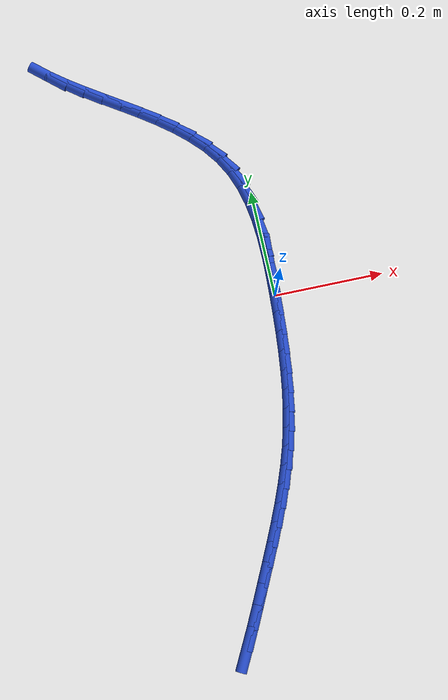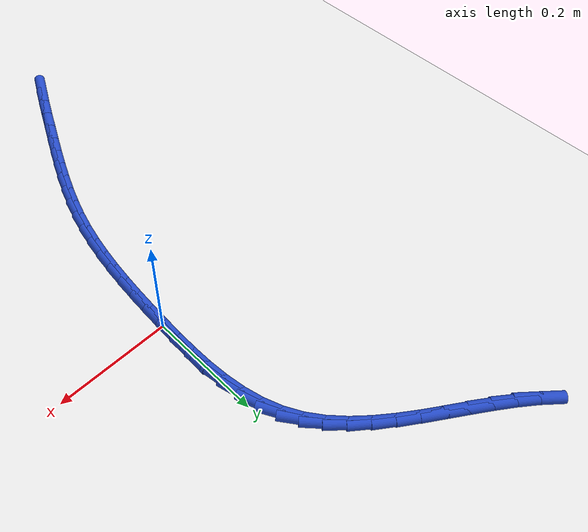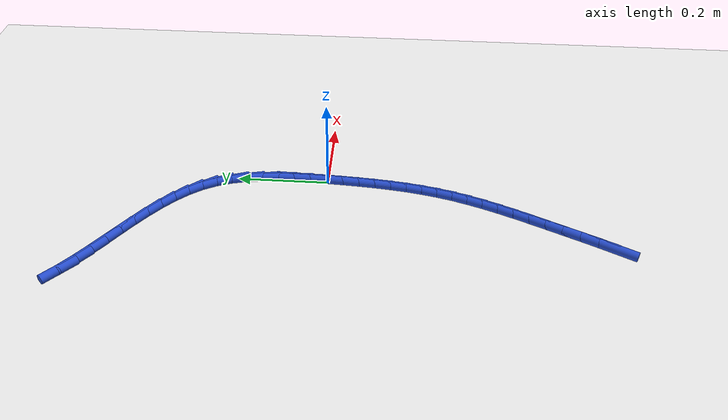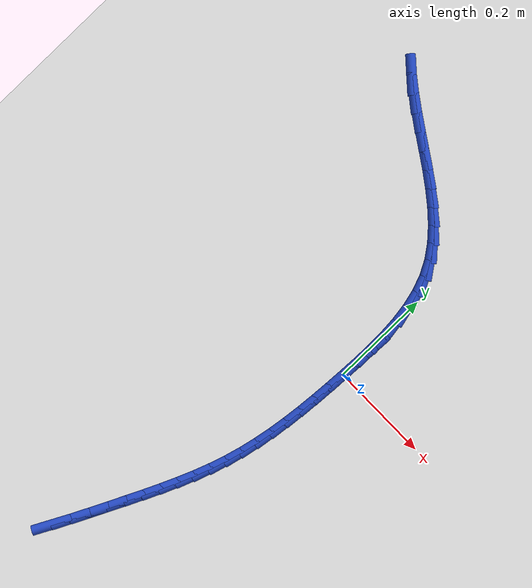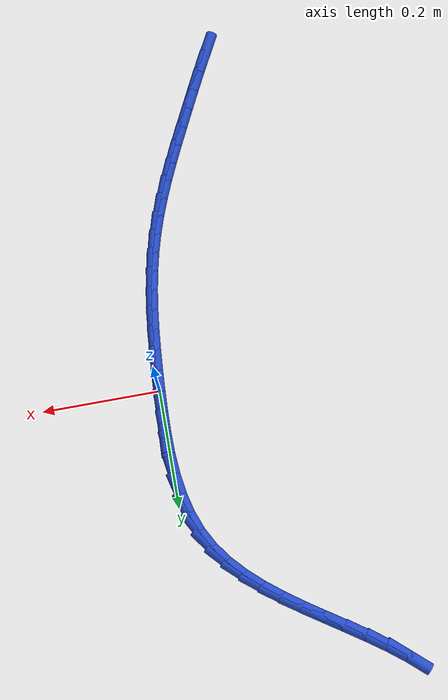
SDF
<sdf version="1.6">
 <world name="default">
  <model name="ground_plane">
   <static>1</static>
   <link name="link">
    <collision name="collision">
     <geometry><plane><normal>0 0 1</normal><size>100 100</size></plane></geometry>
     <surface><friction><ode><mu>100</mu><mu2>50</mu2></ode></friction></surface>
    </collision>
    <visual name="visual">
     <cast_shadows>0</cast_shadows>
     <geometry><plane><normal>0 0 1</normal><size>100 100</size></plane></geometry>
     <material>
      <script><uri>file://media/materials/scripts/gazebo.material</uri><name>Gazebo/WhiteGlow</name></script>
     </material>
    </visual>
   </link>
  </model>
  <model name="line">
   <link name="link_0">
    <pose>-1.0408340855860843e-17 -8.326672684688674e-17 0.01 0 1.57 1.5297266263207427</pose>
    <collision name="collision">
     <geometry><cylinder><radius>0.01</radius><length>0.08</length></cylinder></geometry>
    </collision>
    <visual name="visual">
     <material>
      <script><name>Gazebo/Blue</name><uri>file://media/materials/scripts/gazebo.material</uri></script>
     </material>
     <geometry><cylinder><radius>0.01</radius><length>0.08</length></cylinder></geometry>
    </visual>
   </link>
   <link name="link_1">
    <pose>0.0014969408186911119 0.036428293038624965 0.01 0 1.57 1.5532019675587896</pose>
    <collision name="collision">
     <geometry><cylinder><radius>0.01</radius><length>0.08</length></cylinder></geometry>
    </collision>
    <visual name="visual">
     <material>
      <script><name>Gazebo/Blue</name><uri>file://media/materials/scripts/gazebo.material</uri></script>
     </material>
     <geometry><cylinder><radius>0.01</radius><length>0.08</length></cylinder></geometry>
    </visual>
   </link>
   <link name="link_2">
    <pose>0.0021394575937475698 0.07294286373632472 0.01 0 1.57 -1.5499854050380075</pose>
    <collision name="collision">
     <geometry><cylinder><radius>0.01</radius><length>0.08</length></cylinder></geometry>
    </collision>
    <visual name="visual">
     <material>
      <script><name>Gazebo/Blue</name><uri>file://media/materials/scripts/gazebo.material</uri></script>
     </material>
     <geometry><cylinder><radius>0.01</radius><length>0.08</length></cylinder></geometry>
    </visual>
   </link>
   <link name="link_3">
    <pose>0.001385550090561544 0.1091641647977159 0.01 0 1.57 -1.4952037405692213</pose>
    <collision name="collision">
     <geometry><cylinder><radius>0.01</radius><length>0.08</length></cylinder></geometry>
    </collision>
    <visual name="visual">
     <material>
      <script><name>Gazebo/Blue</name><uri>file://media/materials/scripts/gazebo.material</uri></script>
     </material>
     <geometry><cylinder><radius>0.01</radius><length>0.08</length></cylinder></geometry>
    </visual>
   </link>
   <link name="link_4">
    <pose>-0.0013067819254747844 0.14471264892741523 0.01 0 1.57 -1.4219534766089674</pose>
    <collision name="collision">
     <geometry><cylinder><radius>0.01</radius><length>0.08</length></cylinder></geometry>
    </collision>
    <visual name="visual">
     <material>
      <script><name>Gazebo/Blue</name><uri>file://media/materials/scripts/gazebo.material</uri></script>
     </material>
     <geometry><cylinder><radius>0.01</radius><length>0.08</length></cylinder></geometry>
    </visual>
   </link>
   <link name="link_5">
    <pose>-0.006479538688969233 0.17920876883003942 0.01 0 1.57 -1.3278360114464158</pose>
    <collision name="collision">
     <geometry><cylinder><radius>0.01</radius><length>0.08</length></cylinder></geometry>
    </collision>
    <visual name="visual">
     <material>
      <script><name>Gazebo/Blue</name><uri>file://media/materials/scripts/gazebo.material</uri></script>
     </material>
     <geometry><cylinder><radius>0.01</radius><length>0.08</length></cylinder></geometry>
    </visual>
   </link>
   <link name="link_6">
    <pose>-0.014674720434529626 0.21227297721020516 0.01 0 1.57 -1.2109089163713331</pose>
    <collision name="collision">
     <geometry><cylinder><radius>0.01</radius><length>0.08</length></cylinder></geometry>
    </collision>
    <visual name="visual">
     <material>
      <script><name>Gazebo/Blue</name><uri>file://media/materials/scripts/gazebo.material</uri></script>
     </material>
     <geometry><cylinder><radius>0.01</radius><length>0.08</length></cylinder></geometry>
    </visual>
   </link>
   <link name="link_7">
    <pose>-0.026434327396763775 0.24352572677252915 0.01 0 1.57 -1.0718549530865151</pose>
    <collision name="collision">
     <geometry><cylinder><radius>0.01</radius><length>0.08</length></cylinder></geometry>
    </collision>
    <visual name="visual">
     <material>
      <script><name>Gazebo/Blue</name><uri>file://media/materials/scripts/gazebo.material</uri></script>
     </material>
     <geometry><cylinder><radius>0.01</radius><length>0.08</length></cylinder></geometry>
    </visual>
   </link>
   <link name="link_8">
    <pose>-0.04227820942633523 0.2726008729582041 0.01 0 1.57 -0.9332765152744603</pose>
    <collision name="collision">
     <geometry><cylinder><radius>0.01</radius><length>0.08</length></cylinder></geometry>
    </collision>
    <visual name="visual">
     <material>
      <script><name>Gazebo/Blue</name><uri>file://media/materials/scripts/gazebo.material</uri></script>
     </material>
     <geometry><cylinder><radius>0.01</radius><length>0.08</length></cylinder></geometry>
    </visual>
   </link>
   <link name="link_9">
    <pose>-0.062176346499615294 0.29946498603155314 0.01 0 1.57 -0.8188629687761768</pose>
    <collision name="collision">
     <geometry><cylinder><radius>0.01</radius><length>0.08</length></cylinder></geometry>
    </collision>
    <visual name="visual">
     <material>
      <script><name>Gazebo/Blue</name><uri>file://media/materials/scripts/gazebo.material</uri></script>
     </material>
     <geometry><cylinder><radius>0.01</radius><length>0.08</length></cylinder></geometry>
    </visual>
   </link>
   <link name="link_10">
    <pose>-0.0855254146163852 0.32443153056787777 0.01 0 1.57 -0.7295507578301857</pose>
    <collision name="collision">
     <geometry><cylinder><radius>0.01</radius><length>0.08</length></cylinder></geometry>
    </collision>
    <visual name="visual">
     <material>
      <script><name>Gazebo/Blue</name><uri>file://media/materials/scripts/gazebo.material</uri></script>
     </material>
     <geometry><cylinder><radius>0.01</radius><length>0.08</length></cylinder></geometry>
    </visual>
   </link>
   <link name="link_11">
    <pose>-0.11169525001282593 0.34783021132514275 0.01 0 1.57 -0.6632890130271618</pose>
    <collision name="collision">
     <geometry><cylinder><radius>0.01</radius><length>0.08</length></cylinder></geometry>
    </collision>
    <visual name="visual">
     <material>
      <script><name>Gazebo/Blue</name><uri>file://media/materials/scripts/gazebo.material</uri></script>
     </material>
     <geometry><cylinder><radius>0.01</radius><length>0.08</length></cylinder></geometry>
    </visual>
   </link>
   <link name="link_12">
    <pose>-0.1400556889251184 0.36999073306131275 0.01 0 1.57 -0.6175890432596244</pose>
    <collision name="collision">
     <geometry><cylinder><radius>0.01</radius><length>0.08</length></cylinder></geometry>
    </collision>
    <visual name="visual">
     <material>
      <script><name>Gazebo/Blue</name><uri>file://media/materials/scripts/gazebo.material</uri></script>
     </material>
     <geometry><cylinder><radius>0.01</radius><length>0.08</length></cylinder></geometry>
    </visual>
   </link>
   <link name="link_13">
    <pose>-0.16997656758944332 0.3912428005343521 0.01 0 1.57 -0.5903748497441107</pose>
    <collision name="collision">
     <geometry><cylinder><radius>0.01</radius><length>0.08</length></cylinder></geometry>
    </collision>
    <visual name="visual">
     <material>
      <script><name>Gazebo/Blue</name><uri>file://media/materials/scripts/gazebo.material</uri></script>
     </material>
     <geometry><cylinder><radius>0.01</radius><length>0.08</length></cylinder></geometry>
    </visual>
   </link>
   <link name="link_14">
    <pose>-0.2008277222419817 0.4119161185022253 0.01 0 1.57 -0.5803356197771341</pose>
    <collision name="collision">
     <geometry><cylinder><radius>0.01</radius><length>0.08</length></cylinder></geometry>
    </collision>
    <visual name="visual">
     <material>
      <script><name>Gazebo/Blue</name><uri>file://media/materials/scripts/gazebo.material</uri></script>
     </material>
     <geometry><cylinder><radius>0.01</radius><length>0.08</length></cylinder></geometry>
    </visual>
   </link>
   <link name="link_15">
    <pose>-0.23197898911891446 0.4323403917228972 0.01 0 1.57 -0.5870463768068191</pose>
    <collision name="collision">
     <geometry><cylinder><radius>0.01</radius><length>0.08</length></cylinder></geometry>
    </collision>
    <visual name="visual">
     <material>
      <script><name>Gazebo/Blue</name><uri>file://media/materials/scripts/gazebo.material</uri></script>
     </material>
     <geometry><cylinder><radius>0.01</radius><length>0.08</length></cylinder></geometry>
    </visual>
   </link>
   <link name="link_16">
    <pose>-0.2628002044564224 0.45284532495433205 0.01 0 1.57 -0.6110090541003181</pose>
    <collision name="collision">
     <geometry><cylinder><radius>0.01</radius><length>0.08</length></cylinder></geometry>
    </collision>
    <visual name="visual">
     <material>
      <script><name>Gazebo/Blue</name><uri>file://media/materials/scripts/gazebo.material</uri></script>
     </material>
     <geometry><cylinder><radius>0.01</radius><length>0.08</length></cylinder></geometry>
    </visual>
   </link>
   <link name="link_17">
    <pose>-0.29266120449068644 0.4737606229544946 0.01 0 1.57 -0.6536643172534565</pose>
    <collision name="collision">
     <geometry><cylinder><radius>0.01</radius><length>0.08</length></cylinder></geometry>
    </collision>
    <visual name="visual">
     <material>
      <script><name>Gazebo/Blue</name><uri>file://media/materials/scripts/gazebo.material</uri></script>
     </material>
     <geometry><cylinder><radius>0.01</radius><length>0.08</length></cylinder></geometry>
    </visual>
   </link>
   <link name="link_18">
    <pose>-0.32093182545788745 0.4954159904813492 0.01 0 1.57 -0.7173349057130506</pose>
    <collision name="collision">
     <geometry><cylinder><radius>0.01</radius><length>0.08</length></cylinder></geometry>
    </collision>
    <visual name="visual">
     <material>
      <script><name>Gazebo/Blue</name><uri>file://media/materials/scripts/gazebo.material</uri></script>
     </material>
     <geometry><cylinder><radius>0.01</radius><length>0.08</length></cylinder></geometry>
    </visual>
   </link>
   <link name="link_222">
    <pose>-0.18346906441199393 -0.5994116298831436 0.01 0 1.57 1.0937572096188355</pose>
    <collision name="collision">
     <geometry><cylinder><radius>0.01</radius><length>0.08</length></cylinder></geometry>
    </collision>
    <visual name="visual">
     <material>
      <script><name>Gazebo/Blue</name><uri>file://media/materials/scripts/gazebo.material</uri></script>
     </material>
     <geometry><cylinder><radius>0.01</radius><length>0.08</length></cylinder></geometry>
    </visual>
   </link>
   <link name="link_223">
    <pose>-0.16619457327373913 -0.5659891999272022 0.01 0 1.57 1.1124527865708347</pose>
    <collision name="collision">
     <geometry><cylinder><radius>0.01</radius><length>0.08</length></cylinder></geometry>
    </collision>
    <visual name="visual">
     <material>
      <script><name>Gazebo/Blue</name><uri>file://media/materials/scripts/gazebo.material</uri></script>
     </material>
     <geometry><cylinder><radius>0.01</radius><length>0.08</length></cylinder></geometry>
    </visual>
   </link>
   <link name="link_224">
    <pose>-0.1495947564085314 -0.5323446090053326 0.01 0 1.57 1.1209261792237313</pose>
    <collision name="collision">
     <geometry><cylinder><radius>0.01</radius><length>0.08</length></cylinder></geometry>
    </collision>
    <visual name="visual">
     <material>
      <script><name>Gazebo/Blue</name><uri>file://media/materials/scripts/gazebo.material</uri></script>
     </material>
     <geometry><cylinder><radius>0.01</radius><length>0.08</length></cylinder></geometry>
    </visual>
   </link>
   <link name="link_225">
    <pose>-0.1334636659557037 -0.49893963894151894 0.01 0 1.57 1.1221467389733644</pose>
    <collision name="collision">
     <geometry><cylinder><radius>0.01</radius><length>0.08</length></cylinder></geometry>
    </collision>
    <visual name="visual">
     <material>
      <script><name>Gazebo/Blue</name><uri>file://media/materials/scripts/gazebo.material</uri></script>
     </material>
     <geometry><cylinder><radius>0.01</radius><length>0.08</length></cylinder></geometry>
    </visual>
   </link>
   <link name="link_226">
    <pose>-0.11766556209953241 -0.4661220000624835 0.01 0 1.57 1.127233239741111</pose>
    <collision name="collision">
     <geometry><cylinder><radius>0.01</radius><length>0.08</length></cylinder></geometry>
    </collision>
    <visual name="visual">
     <material>
      <script><name>Gazebo/Blue</name><uri>file://media/materials/scripts/gazebo.material</uri></script>
     </material>
     <geometry><cylinder><radius>0.01</radius><length>0.08</length></cylinder></geometry>
    </visual>
   </link>
   <link name="link_227">
    <pose>-0.10231986375649478 -0.4338248299968357 0.01 0 1.57 1.1390226586704577</pose>
    <collision name="collision">
     <geometry><cylinder><radius>0.01</radius><length>0.08</length></cylinder></geometry>
    </collision>
    <visual name="visual">
     <material>
      <script><name>Gazebo/Blue</name><uri>file://media/materials/scripts/gazebo.material</uri></script>
     </material>
     <geometry><cylinder><radius>0.01</radius><length>0.08</length></cylinder></geometry>
    </visual>
   </link>
   <link name="link_228">
    <pose>-0.08760393821218217 -0.40188711395469623 0.01 0 1.57 1.1577817283213385</pose>
    <collision name="collision">
     <geometry><cylinder><radius>0.01</radius><length>0.08</length></cylinder></geometry>
    </collision>
    <visual name="visual">
     <material>
      <script><name>Gazebo/Blue</name><uri>file://media/materials/scripts/gazebo.material</uri></script>
     </material>
     <geometry><cylinder><radius>0.01</radius><length>0.08</length></cylinder></geometry>
    </visual>
   </link>
   <link name="link_229">
    <pose>-0.07369515275218597 -0.3701478371461858 0.01 0 1.57 1.183685033075768</pose>
    <collision name="collision">
     <geometry><cylinder><radius>0.01</radius><length>0.08</length></cylinder></geometry>
    </collision>
    <visual name="visual">
     <material>
      <script><name>Gazebo/Blue</name><uri>file://media/materials/scripts/gazebo.material</uri></script>
     </material>
     <geometry><cylinder><radius>0.01</radius><length>0.08</length></cylinder></geometry>
    </visual>
   </link>
   <link name="link_230">
    <pose>-0.06077087466209719 -0.3384459847814246 0.01 0 1.57 1.2167760333055544</pose>
    <collision name="collision">
     <geometry><cylinder><radius>0.01</radius><length>0.08</length></cylinder></geometry>
    </collision>
    <visual name="visual">
     <material>
      <script><name>Gazebo/Blue</name><uri>file://media/materials/scripts/gazebo.material</uri></script>
     </material>
     <geometry><cylinder><radius>0.01</radius><length>0.08</length></cylinder></geometry>
    </visual>
   </link>
   <link name="link_231">
    <pose>-0.04900847122750793 -0.30662054207053524 0.01 0 1.57 1.2569194957988814</pose>
    <collision name="collision">
     <geometry><cylinder><radius>0.01</radius><length>0.08</length></cylinder></geometry>
    </collision>
    <visual name="visual">
     <material>
      <script><name>Gazebo/Blue</name><uri>file://media/materials/scripts/gazebo.material</uri></script>
     </material>
     <geometry><cylinder><radius>0.01</radius><length>0.08</length></cylinder></geometry>
    </visual>
   </link>
   <link name="link_232">
    <pose>-0.03858530973400916 -0.27451049422363744 0.01 0 1.57 1.3034929502762245</pose>
    <collision name="collision">
     <geometry><cylinder><radius>0.01</radius><length>0.08</length></cylinder></geometry>
    </collision>
    <visual name="visual">
     <material>
      <script><name>Gazebo/Blue</name><uri>file://media/materials/scripts/gazebo.material</uri></script>
     </material>
     <geometry><cylinder><radius>0.01</radius><length>0.08</length></cylinder></geometry>
    </visual>
   </link>
   <link name="link_233">
    <pose>-0.0296707660743395 -0.24195868917116484 0.01 0 1.57 1.3504347666640744</pose>
    <collision name="collision">
     <geometry><cylinder><radius>0.01</radius><length>0.08</length></cylinder></geometry>
    </collision>
    <visual name="visual">
     <material>
      <script><name>Gazebo/Blue</name><uri>file://media/materials/scripts/gazebo.material</uri></script>
     </material>
     <geometry><cylinder><radius>0.01</radius><length>0.08</length></cylinder></geometry>
    </visual>
   </link>
   <link name="link_234">
    <pose>-0.022263518017020447 -0.20889048350303724 0.01 0 1.57 1.392109967588941</pose>
    <collision name="collision">
     <geometry><cylinder><radius>0.01</radius><length>0.08</length></cylinder></geometry>
    </collision>
    <visual name="visual">
     <material>
      <script><name>Gazebo/Blue</name><uri>file://media/materials/scripts/gazebo.material</uri></script>
     </material>
     <geometry><cylinder><radius>0.01</radius><length>0.08</length></cylinder></geometry>
    </visual>
   </link>
   <link name="link_235">
    <pose>-0.01619852258217858 -0.17531036988370538 0.01 0 1.57 1.4281750973899763</pose>
    <collision name="collision">
     <geometry><cylinder><radius>0.01</radius><length>0.08</length></cylinder></geometry>
    </collision>
    <visual name="visual">
     <material>
      <script><name>Gazebo/Blue</name><uri>file://media/materials/scripts/gazebo.material</uri></script>
     </material>
     <geometry><cylinder><radius>0.01</radius><length>0.08</length></cylinder></geometry>
    </visual>
   </link>
   <link name="link_236">
    <pose>-0.01130414163423884 -0.14122602881262686 0.01 0 1.57 1.4586230233975037</pose>
    <collision name="collision">
     <geometry><cylinder><radius>0.01</radius><length>0.08</length></cylinder></geometry>
    </collision>
    <visual name="visual">
     <material>
      <script><name>Gazebo/Blue</name><uri>file://media/materials/scripts/gazebo.material</uri></script>
     </material>
     <geometry><cylinder><radius>0.01</radius><length>0.08</length></cylinder></geometry>
    </visual>
   </link>
   <link name="link_237">
    <pose>-0.007408737037626176 -0.10664514078925948 0.01 0 1.57 1.4835338137042389</pose>
    <collision name="collision">
     <geometry><cylinder><radius>0.01</radius><length>0.08</length></cylinder></geometry>
    </collision>
    <visual name="visual">
     <material>
      <script><name>Gazebo/Blue</name><uri>file://media/materials/scripts/gazebo.material</uri></script>
     </material>
     <geometry><cylinder><radius>0.01</radius><length>0.08</length></cylinder></geometry>
    </visual>
   </link>
   <link name="link_238">
    <pose>-0.004340670656765456 -0.07157538631305993 0.01 0 1.57 1.5030435790095833</pose>
    <collision name="collision">
     <geometry><cylinder><radius>0.01</radius><length>0.08</length></cylinder></geometry>
    </collision>
    <visual name="visual">
     <material>
      <script><name>Gazebo/Blue</name><uri>file://media/materials/scripts/gazebo.material</uri></script>
     </material>
     <geometry><cylinder><radius>0.01</radius><length>0.08</length></cylinder></geometry>
    </visual>
   </link>
   <link name="link_239">
    <pose>-0.0019283043560817835 -0.03602444588348787 0.01 0 1.57 1.5173196999540417</pose>
    <collision name="collision">
     <geometry><cylinder><radius>0.01</radius><length>0.08</length></cylinder></geometry>
    </collision>
    <visual name="visual">
     <material>
      <script><name>Gazebo/Blue</name><uri>file://media/materials/scripts/gazebo.material</uri></script>
     </material>
     <geometry><cylinder><radius>0.01</radius><length>0.08</length></cylinder></geometry>
    </visual>
   </link>
   <link name="link_240">
    <pose>-9.75781955236954e-18 -5.551115123125783e-17 0.01 0 1.57 1.526542734373073</pose>
    <collision name="collision">
     <geometry><cylinder><radius>0.01</radius><length>0.08</length></cylinder></geometry>
    </collision>
    <visual name="visual">
     <material>
      <script><name>Gazebo/Blue</name><uri>file://media/materials/scripts/gazebo.material</uri></script>
     </material>
     <geometry><cylinder><radius>0.01</radius><length>0.08</length></cylinder></geometry>
    </visual>
   </link>
   <link name="link_241">
    <pose>0.0016158805470549201 0.036490270837945794 0.01 0 1.57 1.530894428007004</pose>
    <collision name="collision">
     <geometry><cylinder><radius>0.01</radius><length>0.08</length></cylinder></geometry>
    </collision>
    <visual name="visual">
     <material>
      <script><name>Gazebo/Blue</name><uri>file://media/materials/scripts/gazebo.material</uri></script>
     </material>
     <geometry><cylinder><radius>0.01</radius><length>0.08</length></cylinder></geometry>
    </visual>
   </link>
   <link name="link_242">
    <pose>0.0030909754206580636 0.07343868613089194 0.01 0 1.57 1.5287319558295076</pose>
    <collision name="collision">
     <geometry><cylinder><radius>0.01</radius><length>0.08</length></cylinder></geometry>
    </collision>
    <visual name="visual">
     <material>
      <script><name>Gazebo/Blue</name><uri>file://media/materials/scripts/gazebo.material</uri></script>
     </material>
     <geometry><cylinder><radius>0.01</radius><length>0.08</length></cylinder></geometry>
    </visual>
   </link>
  </model>
 </world>
</sdf>
